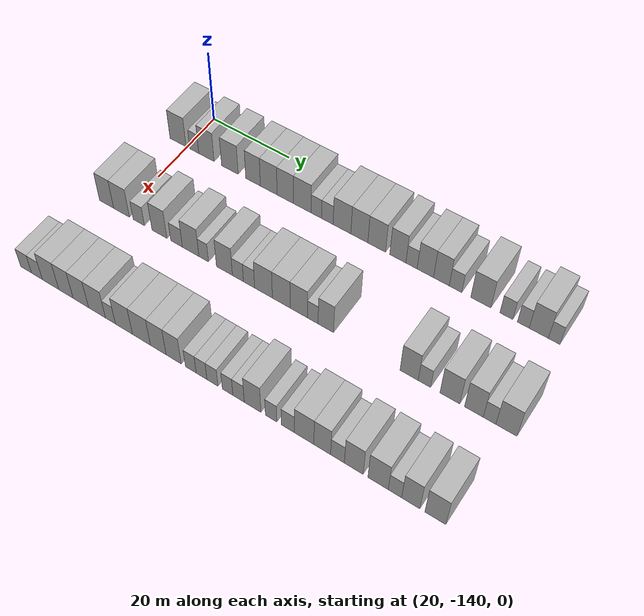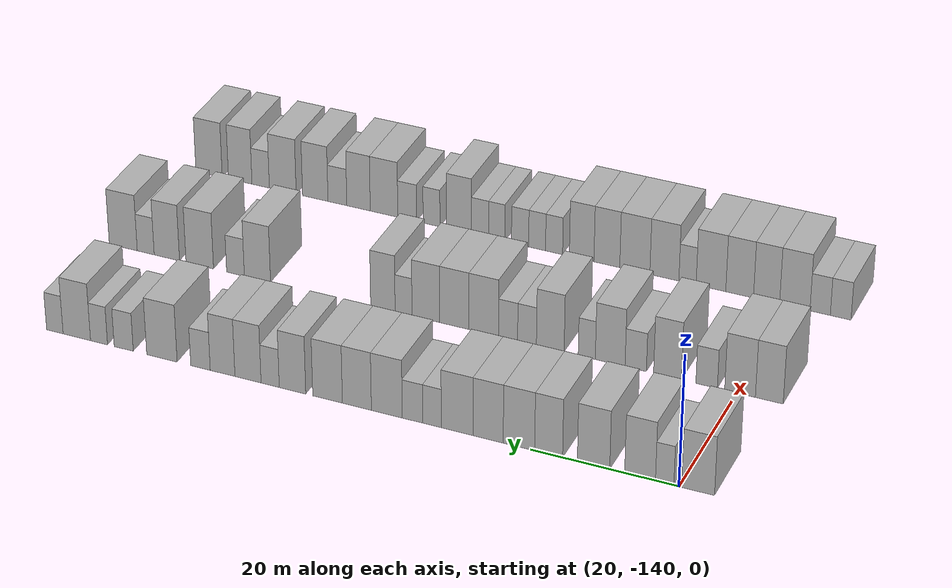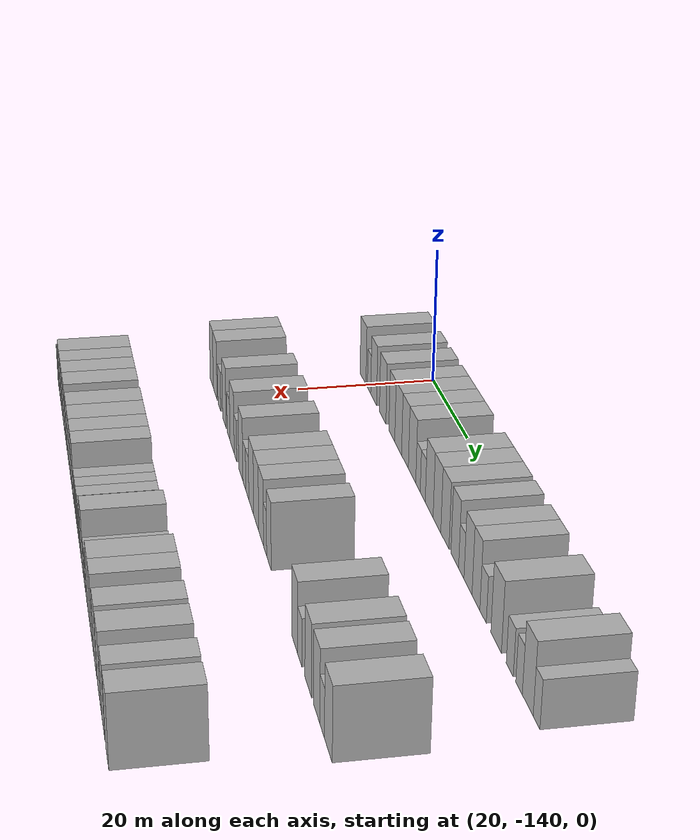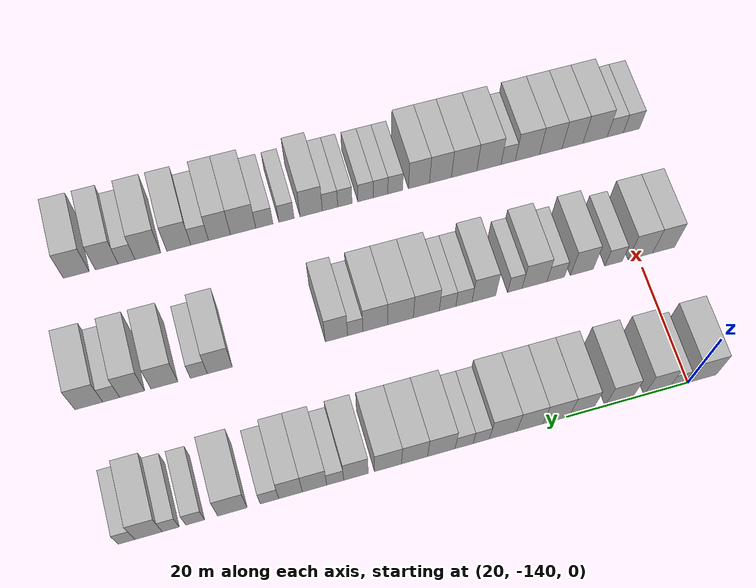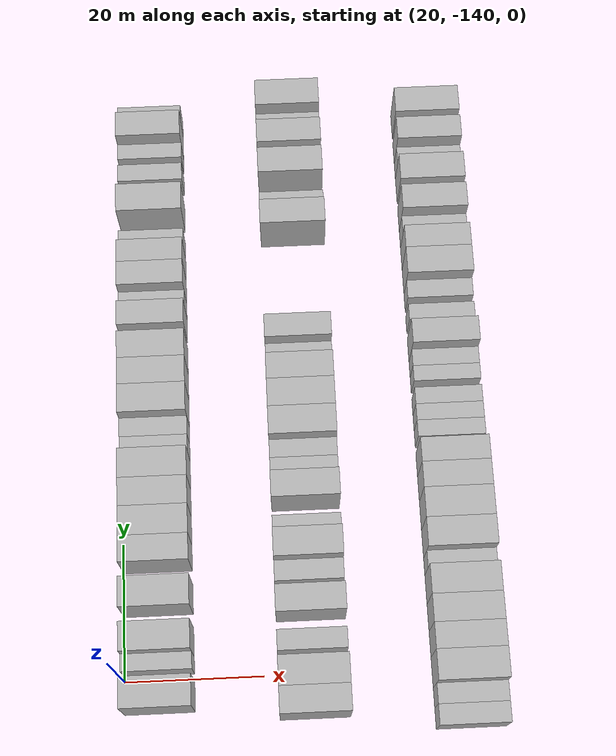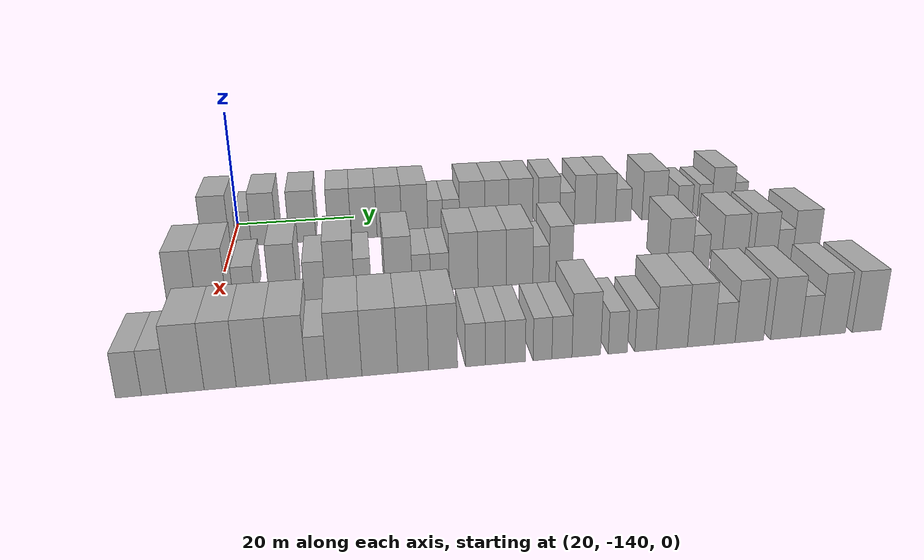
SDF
<sdf version="1.6">
 <world name="default">
  <model name="building_20">
   <static>1</static>
   <pose>25.0000 -142.4273 0 0.000000 0.000000 0.000000</pose>
   <link name="link">
    <pose>0 0 4.50 0 0 0</pose>
    <collision name="collision"><geometry><box><size>10.0000 4.3751 9.0000</size></box></geometry></collision>
    <visual name="visual">
     <cast_shadows>0</cast_shadows>
     <geometry><box><size>10.0000 4.3751 9.0000</size></box></geometry>
     <material>
      <script>
       <uri>model://HANNAS_wall/materials/scripts</uri>
       <uri>model://HANNAS_wall/materials/textures</uri>
       <name>vrc/HANNAS_wall</name>
      </script>
     </material>
    </visual>
   </link>
  </model>
  <model name="building_21">
   <static>1</static>
   <pose>25.0000 -138.0152 0 0.000000 0.000000 0.000000</pose>
   <link name="link">
    <pose>0 0 3.00 0 0 0</pose>
    <collision name="collision"><geometry><box><size>10.0000 2.4492 6.0000</size></box></geometry></collision>
    <visual name="visual">
     <cast_shadows>0</cast_shadows>
     <geometry><box><size>10.0000 2.4492 6.0000</size></box></geometry>
     <material>
      <script>
       <uri>model://HANNAS_wall/materials/scripts</uri>
       <uri>model://HANNAS_wall/materials/textures</uri>
       <name>vrc/HANNAS_wall</name>
      </script>
     </material>
    </visual>
   </link>
  </model>
  <model name="building_22">
   <static>1</static>
   <pose>25.0000 -134.7343 0 0.000000 0.000000 0.000000</pose>
   <link name="link">
    <pose>0 0 4.50 0 0 0</pose>
    <collision name="collision"><geometry><box><size>10.0000 4.1126 9.0000</size></box></geometry></collision>
    <visual name="visual">
     <cast_shadows>0</cast_shadows>
     <geometry><box><size>10.0000 4.1126 9.0000</size></box></geometry>
     <material>
      <script>
       <uri>model://HANNAS_wall/materials/scripts</uri>
       <uri>model://HANNAS_wall/materials/textures</uri>
       <name>vrc/HANNAS_wall</name>
      </script>
     </material>
    </visual>
   </link>
  </model>
  <model name="building_23">
   <static>1</static>
   <pose>25.0000 -128.4942 0 0.000000 0.000000 0.000000</pose>
   <link name="link">
    <pose>0 0 4.50 0 0 0</pose>
    <collision name="collision"><geometry><box><size>10.0000 4.3674 9.0000</size></box></geometry></collision>
    <visual name="visual">
     <cast_shadows>0</cast_shadows>
     <geometry><box><size>10.0000 4.3674 9.0000</size></box></geometry>
     <material>
      <script>
       <uri>model://HANNAS_wall/materials/scripts</uri>
       <uri>model://HANNAS_wall/materials/textures</uri>
       <name>vrc/HANNAS_wall</name>
      </script>
     </material>
    </visual>
   </link>
  </model>
  <model name="building_24">
   <static>1</static>
   <pose>25.0000 -122.4114 0 0.000000 0.000000 0.000000</pose>
   <link name="link">
    <pose>0 0 4.50 0 0 0</pose>
    <collision name="collision"><geometry><box><size>10.0000 3.7984 9.0000</size></box></geometry></collision>
    <visual name="visual">
     <cast_shadows>0</cast_shadows>
     <geometry><box><size>10.0000 3.7984 9.0000</size></box></geometry>
     <material>
      <script>
       <uri>model://HANNAS_wall/materials/scripts</uri>
       <uri>model://HANNAS_wall/materials/textures</uri>
       <name>vrc/HANNAS_wall</name>
      </script>
     </material>
    </visual>
   </link>
  </model>
  <model name="building_25">
   <static>1</static>
   <pose>25.0000 -118.3592 0 0.000000 0.000000 0.000000</pose>
   <link name="link">
    <pose>0 0 4.50 0 0 0</pose>
    <collision name="collision"><geometry><box><size>10.0000 4.3058 9.0000</size></box></geometry></collision>
    <visual name="visual">
     <cast_shadows>0</cast_shadows>
     <geometry><box><size>10.0000 4.3058 9.0000</size></box></geometry>
     <material>
      <script>
       <uri>model://HANNAS_wall/materials/scripts</uri>
       <uri>model://HANNAS_wall/materials/textures</uri>
       <name>vrc/HANNAS_wall</name>
      </script>
     </material>
    </visual>
   </link>
  </model>
  <model name="building_26">
   <static>1</static>
   <pose>25.0000 -114.1197 0 0.000000 0.000000 0.000000</pose>
   <link name="link">
    <pose>0 0 4.50 0 0 0</pose>
    <collision name="collision"><geometry><box><size>10.0000 4.1732 9.0000</size></box></geometry></collision>
    <visual name="visual">
     <cast_shadows>0</cast_shadows>
     <geometry><box><size>10.0000 4.1732 9.0000</size></box></geometry>
     <material>
      <script>
       <uri>model://HANNAS_wall/materials/scripts</uri>
       <uri>model://HANNAS_wall/materials/textures</uri>
       <name>vrc/HANNAS_wall</name>
      </script>
     </material>
    </visual>
   </link>
  </model>
  <model name="building_27">
   <static>1</static>
   <pose>25.0000 -109.8321 0 0.000000 0.000000 0.000000</pose>
   <link name="link">
    <pose>0 0 4.50 0 0 0</pose>
    <collision name="collision"><geometry><box><size>10.0000 4.4021 9.0000</size></box></geometry></collision>
    <visual name="visual">
     <cast_shadows>0</cast_shadows>
     <geometry><box><size>10.0000 4.4021 9.0000</size></box></geometry>
     <material>
      <script>
       <uri>model://HANNAS_wall/materials/scripts</uri>
       <uri>model://HANNAS_wall/materials/textures</uri>
       <name>vrc/HANNAS_wall</name>
      </script>
     </material>
    </visual>
   </link>
  </model>
  <model name="building_28">
   <static>1</static>
   <pose>25.0000 -106.3405 0 0.000000 0.000000 0.000000</pose>
   <link name="link">
    <pose>0 0 3.00 0 0 0</pose>
    <collision name="collision"><geometry><box><size>10.0000 2.5811 6.0000</size></box></geometry></collision>
    <visual name="visual">
     <cast_shadows>0</cast_shadows>
     <geometry><box><size>10.0000 2.5811 6.0000</size></box></geometry>
     <material>
      <script>
       <uri>model://HANNAS_wall/materials/scripts</uri>
       <uri>model://HANNAS_wall/materials/textures</uri>
       <name>vrc/HANNAS_wall</name>
      </script>
     </material>
    </visual>
   </link>
  </model>
  <model name="building_29">
   <static>1</static>
   <pose>25.0000 -103.6158 0 0.000000 0.000000 0.000000</pose>
   <link name="link">
    <pose>0 0 3.00 0 0 0</pose>
    <collision name="collision"><geometry><box><size>10.0000 2.8682 6.0000</size></box></geometry></collision>
    <visual name="visual">
     <cast_shadows>0</cast_shadows>
     <geometry><box><size>10.0000 2.8682 6.0000</size></box></geometry>
     <material>
      <script>
       <uri>model://HANNAS_wall/materials/scripts</uri>
       <uri>model://HANNAS_wall/materials/textures</uri>
       <name>vrc/HANNAS_wall</name>
      </script>
     </material>
    </visual>
   </link>
  </model>
  <model name="building_30">
   <static>1</static>
   <pose>25.0000 -100.0108 0 0.000000 0.000000 0.000000</pose>
   <link name="link">
    <pose>0 0 4.50 0 0 0</pose>
    <collision name="collision"><geometry><box><size>10.0000 4.3418 9.0000</size></box></geometry></collision>
    <visual name="visual">
     <cast_shadows>0</cast_shadows>
     <geometry><box><size>10.0000 4.3418 9.0000</size></box></geometry>
     <material>
      <script>
       <uri>model://HANNAS_wall/materials/scripts</uri>
       <uri>model://HANNAS_wall/materials/textures</uri>
       <name>vrc/HANNAS_wall</name>
      </script>
     </material>
    </visual>
   </link>
  </model>
  <model name="building_31">
   <static>1</static>
   <pose>25.0000 -95.7848 0 0.000000 0.000000 0.000000</pose>
   <link name="link">
    <pose>0 0 4.50 0 0 0</pose>
    <collision name="collision"><geometry><box><size>10.0000 4.1102 9.0000</size></box></geometry></collision>
    <visual name="visual">
     <cast_shadows>0</cast_shadows>
     <geometry><box><size>10.0000 4.1102 9.0000</size></box></geometry>
     <material>
      <script>
       <uri>model://HANNAS_wall/materials/scripts</uri>
       <uri>model://HANNAS_wall/materials/textures</uri>
       <name>vrc/HANNAS_wall</name>
      </script>
     </material>
    </visual>
   </link>
  </model>
  <model name="building_32">
   <static>1</static>
   <pose>25.0000 -91.6138 0 0.000000 0.000000 0.000000</pose>
   <link name="link">
    <pose>0 0 4.50 0 0 0</pose>
    <collision name="collision"><geometry><box><size>10.0000 4.2317 9.0000</size></box></geometry></collision>
    <visual name="visual">
     <cast_shadows>0</cast_shadows>
     <geometry><box><size>10.0000 4.2317 9.0000</size></box></geometry>
     <material>
      <script>
       <uri>model://HANNAS_wall/materials/scripts</uri>
       <uri>model://HANNAS_wall/materials/textures</uri>
       <name>vrc/HANNAS_wall</name>
      </script>
     </material>
    </visual>
   </link>
  </model>
  <model name="building_33">
   <static>1</static>
   <pose>25.0000 -86.5945 0 0.000000 0.000000 0.000000</pose>
   <link name="link">
    <pose>0 0 4.50 0 0 0</pose>
    <collision name="collision"><geometry><box><size>10.0000 3.8068 9.0000</size></box></geometry></collision>
    <visual name="visual">
     <cast_shadows>0</cast_shadows>
     <geometry><box><size>10.0000 3.8068 9.0000</size></box></geometry>
     <material>
      <script>
       <uri>model://HANNAS_wall/materials/scripts</uri>
       <uri>model://HANNAS_wall/materials/textures</uri>
       <name>vrc/HANNAS_wall</name>
      </script>
     </material>
    </visual>
   </link>
  </model>
  <model name="building_34">
   <static>1</static>
   <pose>25.0000 -83.3781 0 0.000000 0.000000 0.000000</pose>
   <link name="link">
    <pose>0 0 3.00 0 0 0</pose>
    <collision name="collision"><geometry><box><size>10.0000 2.6260 6.0000</size></box></geometry></collision>
    <visual name="visual">
     <cast_shadows>0</cast_shadows>
     <geometry><box><size>10.0000 2.6260 6.0000</size></box></geometry>
     <material>
      <script>
       <uri>model://HANNAS_wall/materials/scripts</uri>
       <uri>model://HANNAS_wall/materials/textures</uri>
       <name>vrc/HANNAS_wall</name>
      </script>
     </material>
    </visual>
   </link>
  </model>
  <model name="building_35">
   <static>1</static>
   <pose>25.0000 -80.1703 0 0.000000 0.000000 0.000000</pose>
   <link name="link">
    <pose>0 0 4.50 0 0 0</pose>
    <collision name="collision"><geometry><box><size>10.0000 3.7896 9.0000</size></box></geometry></collision>
    <visual name="visual">
     <cast_shadows>0</cast_shadows>
     <geometry><box><size>10.0000 3.7896 9.0000</size></box></geometry>
     <material>
      <script>
       <uri>model://HANNAS_wall/materials/scripts</uri>
       <uri>model://HANNAS_wall/materials/textures</uri>
       <name>vrc/HANNAS_wall</name>
      </script>
     </material>
    </visual>
   </link>
  </model>
  <model name="building_36">
   <static>1</static>
   <pose>25.0000 -76.4731 0 0.000000 0.000000 0.000000</pose>
   <link name="link">
    <pose>0 0 4.50 0 0 0</pose>
    <collision name="collision"><geometry><box><size>10.0000 3.6050 9.0000</size></box></geometry></collision>
    <visual name="visual">
     <cast_shadows>0</cast_shadows>
     <geometry><box><size>10.0000 3.6050 9.0000</size></box></geometry>
     <material>
      <script>
       <uri>model://HANNAS_wall/materials/scripts</uri>
       <uri>model://HANNAS_wall/materials/textures</uri>
       <name>vrc/HANNAS_wall</name>
      </script>
     </material>
    </visual>
   </link>
  </model>
  <model name="building_37">
   <static>1</static>
   <pose>25.0000 -73.2413 0 0.000000 0.000000 0.000000</pose>
   <link name="link">
    <pose>0 0 3.00 0 0 0</pose>
    <collision name="collision"><geometry><box><size>10.0000 2.8585 6.0000</size></box></geometry></collision>
    <visual name="visual">
     <cast_shadows>0</cast_shadows>
     <geometry><box><size>10.0000 2.8585 6.0000</size></box></geometry>
     <material>
      <script>
       <uri>model://HANNAS_wall/materials/scripts</uri>
       <uri>model://HANNAS_wall/materials/textures</uri>
       <name>vrc/HANNAS_wall</name>
      </script>
     </material>
    </visual>
   </link>
  </model>
  <model name="building_38">
   <static>1</static>
   <pose>25.0000 -67.5652 0 0.000000 0.000000 0.000000</pose>
   <link name="link">
    <pose>0 0 4.50 0 0 0</pose>
    <collision name="collision"><geometry><box><size>10.0000 4.4938 9.0000</size></box></geometry></collision>
    <visual name="visual">
     <cast_shadows>0</cast_shadows>
     <geometry><box><size>10.0000 4.4938 9.0000</size></box></geometry>
     <material>
      <script>
       <uri>model://HANNAS_wall/materials/scripts</uri>
       <uri>model://HANNAS_wall/materials/textures</uri>
       <name>vrc/HANNAS_wall</name>
      </script>
     </material>
    </visual>
   </link>
  </model>
  <model name="building_39">
   <static>1</static>
   <pose>25.0000 -61.8991 0 0.000000 0.000000 0.000000</pose>
   <link name="link">
    <pose>0 0 3.00 0 0 0</pose>
    <collision name="collision"><geometry><box><size>10.0000 2.8385 6.0000</size></box></geometry></collision>
    <visual name="visual">
     <cast_shadows>0</cast_shadows>
     <geometry><box><size>10.0000 2.8385 6.0000</size></box></geometry>
     <material>
      <script>
       <uri>model://HANNAS_wall/materials/scripts</uri>
       <uri>model://HANNAS_wall/materials/textures</uri>
       <name>vrc/HANNAS_wall</name>
      </script>
     </material>
    </visual>
   </link>
  </model>
  <model name="building_40">
   <static>1</static>
   <pose>25.0000 -58.2076 0 0.000000 0.000000 0.000000</pose>
   <link name="link">
    <pose>0 0 3.00 0 0 0</pose>
    <collision name="collision"><geometry><box><size>10.0000 2.5444 6.0000</size></box></geometry></collision>
    <visual name="visual">
     <cast_shadows>0</cast_shadows>
     <geometry><box><size>10.0000 2.5444 6.0000</size></box></geometry>
     <material>
      <script>
       <uri>model://HANNAS_wall/materials/scripts</uri>
       <uri>model://HANNAS_wall/materials/textures</uri>
       <name>vrc/HANNAS_wall</name>
      </script>
     </material>
    </visual>
   </link>
  </model>
  <model name="building_41">
   <static>1</static>
   <pose>25.0000 -54.8697 0 0.000000 0.000000 0.000000</pose>
   <link name="link">
    <pose>0 0 4.50 0 0 0</pose>
    <collision name="collision"><geometry><box><size>10.0000 4.1313 9.0000</size></box></geometry></collision>
    <visual name="visual">
     <cast_shadows>0</cast_shadows>
     <geometry><box><size>10.0000 4.1313 9.0000</size></box></geometry>
     <material>
      <script>
       <uri>model://HANNAS_wall/materials/scripts</uri>
       <uri>model://HANNAS_wall/materials/textures</uri>
       <name>vrc/HANNAS_wall</name>
      </script>
     </material>
    </visual>
   </link>
  </model>
  <model name="building_42">
   <static>1</static>
   <pose>25.0000 -51.5605 0 0.000000 0.000000 0.000000</pose>
   <link name="link">
    <pose>0 0 3.00 0 0 0</pose>
    <collision name="collision"><geometry><box><size>10.0000 2.4872 6.0000</size></box></geometry></collision>
    <visual name="visual">
     <cast_shadows>0</cast_shadows>
     <geometry><box><size>10.0000 2.4872 6.0000</size></box></geometry>
     <material>
      <script>
       <uri>model://HANNAS_wall/materials/scripts</uri>
       <uri>model://HANNAS_wall/materials/textures</uri>
       <name>vrc/HANNAS_wall</name>
      </script>
     </material>
    </visual>
   </link>
  </model>
  <model name="building_143">
   <static>1</static>
   <pose>47.0000 -144.3827 0 0.000000 0.000000 0.000000</pose>
   <link name="link">
    <pose>0 0 4.50 0 0 0</pose>
    <collision name="collision"><geometry><box><size>10.0000 3.7878 9.0000</size></box></geometry></collision>
    <visual name="visual">
     <cast_shadows>0</cast_shadows>
     <geometry><box><size>10.0000 3.7878 9.0000</size></box></geometry>
     <material>
      <script>
       <uri>model://HANNAS_wall/materials/scripts</uri>
       <uri>model://HANNAS_wall/materials/textures</uri>
       <name>vrc/HANNAS_wall</name>
      </script>
     </material>
    </visual>
   </link>
  </model>
  <model name="building_144">
   <static>1</static>
   <pose>47.0000 -140.3847 0 0.000000 0.000000 0.000000</pose>
   <link name="link">
    <pose>0 0 4.50 0 0 0</pose>
    <collision name="collision"><geometry><box><size>10.0000 4.2082 9.0000</size></box></geometry></collision>
    <visual name="visual">
     <cast_shadows>0</cast_shadows>
     <geometry><box><size>10.0000 4.2082 9.0000</size></box></geometry>
     <material>
      <script>
       <uri>model://HANNAS_wall/materials/scripts</uri>
       <uri>model://HANNAS_wall/materials/textures</uri>
       <name>vrc/HANNAS_wall</name>
      </script>
     </material>
    </visual>
   </link>
  </model>
  <model name="building_145">
   <static>1</static>
   <pose>47.0000 -135.7984 0 0.000000 0.000000 0.000000</pose>
   <link name="link">
    <pose>0 0 3.00 0 0 0</pose>
    <collision name="collision"><geometry><box><size>10.0000 2.9645 6.0000</size></box></geometry></collision>
    <visual name="visual">
     <cast_shadows>0</cast_shadows>
     <geometry><box><size>10.0000 2.9645 6.0000</size></box></geometry>
     <material>
      <script>
       <uri>model://HANNAS_wall/materials/scripts</uri>
       <uri>model://HANNAS_wall/materials/textures</uri>
       <name>vrc/HANNAS_wall</name>
      </script>
     </material>
    </visual>
   </link>
  </model>
  <model name="building_146">
   <static>1</static>
   <pose>47.0000 -130.3795 0 0.000000 0.000000 0.000000</pose>
   <link name="link">
    <pose>0 0 4.50 0 0 0</pose>
    <collision name="collision"><geometry><box><size>10.0000 3.8733 9.0000</size></box></geometry></collision>
    <visual name="visual">
     <cast_shadows>0</cast_shadows>
     <geometry><box><size>10.0000 3.8733 9.0000</size></box></geometry>
     <material>
      <script>
       <uri>model://HANNAS_wall/materials/scripts</uri>
       <uri>model://HANNAS_wall/materials/textures</uri>
       <name>vrc/HANNAS_wall</name>
      </script>
     </material>
    </visual>
   </link>
  </model>
  <model name="building_147">
   <static>1</static>
   <pose>47.0000 -125.9514 0 0.000000 0.000000 0.000000</pose>
   <link name="link">
    <pose>0 0 3.00 0 0 0</pose>
    <collision name="collision"><geometry><box><size>10.0000 2.9828 6.0000</size></box></geometry></collision>
    <visual name="visual">
     <cast_shadows>0</cast_shadows>
     <geometry><box><size>10.0000 2.9828 6.0000</size></box></geometry>
     <material>
      <script>
       <uri>model://HANNAS_wall/materials/scripts</uri>
       <uri>model://HANNAS_wall/materials/textures</uri>
       <name>vrc/HANNAS_wall</name>
      </script>
     </material>
    </visual>
   </link>
  </model>
  <model name="building_148">
   <static>1</static>
   <pose>47.0000 -122.3668 0 0.000000 0.000000 0.000000</pose>
   <link name="link">
    <pose>0 0 4.50 0 0 0</pose>
    <collision name="collision"><geometry><box><size>10.0000 4.1864 9.0000</size></box></geometry></collision>
    <visual name="visual">
     <cast_shadows>0</cast_shadows>
     <geometry><box><size>10.0000 4.1864 9.0000</size></box></geometry>
     <material>
      <script>
       <uri>model://HANNAS_wall/materials/scripts</uri>
       <uri>model://HANNAS_wall/materials/textures</uri>
       <name>vrc/HANNAS_wall</name>
      </script>
     </material>
    </visual>
   </link>
  </model>
  <model name="building_149">
   <static>1</static>
   <pose>47.0000 -119.0679 0 0.000000 0.000000 0.000000</pose>
   <link name="link">
    <pose>0 0 3.00 0 0 0</pose>
    <collision name="collision"><geometry><box><size>10.0000 2.4114 6.0000</size></box></geometry></collision>
    <visual name="visual">
     <cast_shadows>0</cast_shadows>
     <geometry><box><size>10.0000 2.4114 6.0000</size></box></geometry>
     <material>
      <script>
       <uri>model://HANNAS_wall/materials/scripts</uri>
       <uri>model://HANNAS_wall/materials/textures</uri>
       <name>vrc/HANNAS_wall</name>
      </script>
     </material>
    </visual>
   </link>
  </model>
  <model name="building_150">
   <static>1</static>
   <pose>47.0000 -113.8886 0 0.000000 0.000000 0.000000</pose>
   <link name="link">
    <pose>0 0 4.50 0 0 0</pose>
    <collision name="collision"><geometry><box><size>10.0000 3.9472 9.0000</size></box></geometry></collision>
    <visual name="visual">
     <cast_shadows>0</cast_shadows>
     <geometry><box><size>10.0000 3.9472 9.0000</size></box></geometry>
     <material>
      <script>
       <uri>model://HANNAS_wall/materials/scripts</uri>
       <uri>model://HANNAS_wall/materials/textures</uri>
       <name>vrc/HANNAS_wall</name>
      </script>
     </material>
    </visual>
   </link>
  </model>
  <model name="building_151">
   <static>1</static>
   <pose>47.0000 -110.5682 0 0.000000 0.000000 0.000000</pose>
   <link name="link">
    <pose>0 0 3.00 0 0 0</pose>
    <collision name="collision"><geometry><box><size>10.0000 2.6937 6.0000</size></box></geometry></collision>
    <visual name="visual">
     <cast_shadows>0</cast_shadows>
     <geometry><box><size>10.0000 2.6937 6.0000</size></box></geometry>
     <material>
      <script>
       <uri>model://HANNAS_wall/materials/scripts</uri>
       <uri>model://HANNAS_wall/materials/textures</uri>
       <name>vrc/HANNAS_wall</name>
      </script>
     </material>
    </visual>
   </link>
  </model>
  <model name="building_152">
   <static>1</static>
   <pose>47.0000 -107.8478 0 0.000000 0.000000 0.000000</pose>
   <link name="link">
    <pose>0 0 3.00 0 0 0</pose>
    <collision name="collision"><geometry><box><size>10.0000 2.7470 6.0000</size></box></geometry></collision>
    <visual name="visual">
     <cast_shadows>0</cast_shadows>
     <geometry><box><size>10.0000 2.7470 6.0000</size></box></geometry>
     <material>
      <script>
       <uri>model://HANNAS_wall/materials/scripts</uri>
       <uri>model://HANNAS_wall/materials/textures</uri>
       <name>vrc/HANNAS_wall</name>
      </script>
     </material>
    </visual>
   </link>
  </model>
  <model name="building_153">
   <static>1</static>
   <pose>47.0000 -104.3420 0 0.000000 0.000000 0.000000</pose>
   <link name="link">
    <pose>0 0 4.50 0 0 0</pose>
    <collision name="collision"><geometry><box><size>10.0000 4.2645 9.0000</size></box></geometry></collision>
    <visual name="visual">
     <cast_shadows>0</cast_shadows>
     <geometry><box><size>10.0000 4.2645 9.0000</size></box></geometry>
     <material>
      <script>
       <uri>model://HANNAS_wall/materials/scripts</uri>
       <uri>model://HANNAS_wall/materials/textures</uri>
       <name>vrc/HANNAS_wall</name>
      </script>
     </material>
    </visual>
   </link>
  </model>
  <model name="building_154">
   <static>1</static>
   <pose>47.0000 -100.0839 0 0.000000 0.000000 0.000000</pose>
   <link name="link">
    <pose>0 0 4.50 0 0 0</pose>
    <collision name="collision"><geometry><box><size>10.0000 4.2518 9.0000</size></box></geometry></collision>
    <visual name="visual">
     <cast_shadows>0</cast_shadows>
     <geometry><box><size>10.0000 4.2518 9.0000</size></box></geometry>
     <material>
      <script>
       <uri>model://HANNAS_wall/materials/scripts</uri>
       <uri>model://HANNAS_wall/materials/textures</uri>
       <name>vrc/HANNAS_wall</name>
      </script>
     </material>
    </visual>
   </link>
  </model>
  <model name="building_155">
   <static>1</static>
   <pose>47.0000 -95.9371 0 0.000000 0.000000 0.000000</pose>
   <link name="link">
    <pose>0 0 4.50 0 0 0</pose>
    <collision name="collision"><geometry><box><size>10.0000 4.0418 9.0000</size></box></geometry></collision>
    <visual name="visual">
     <cast_shadows>0</cast_shadows>
     <geometry><box><size>10.0000 4.0418 9.0000</size></box></geometry>
     <material>
      <script>
       <uri>model://HANNAS_wall/materials/scripts</uri>
       <uri>model://HANNAS_wall/materials/textures</uri>
       <name>vrc/HANNAS_wall</name>
      </script>
     </material>
    </visual>
   </link>
  </model>
  <model name="building_156">
   <static>1</static>
   <pose>47.0000 -92.6735 0 0.000000 0.000000 0.000000</pose>
   <link name="link">
    <pose>0 0 3.00 0 0 0</pose>
    <collision name="collision"><geometry><box><size>10.0000 2.4854 6.0000</size></box></geometry></collision>
    <visual name="visual">
     <cast_shadows>0</cast_shadows>
     <geometry><box><size>10.0000 2.4854 6.0000</size></box></geometry>
     <material>
      <script>
       <uri>model://HANNAS_wall/materials/scripts</uri>
       <uri>model://HANNAS_wall/materials/textures</uri>
       <name>vrc/HANNAS_wall</name>
      </script>
     </material>
    </visual>
   </link>
  </model>
  <model name="building_157">
   <static>1</static>
   <pose>47.0000 -89.6303 0 0.000000 0.000000 0.000000</pose>
   <link name="link">
    <pose>0 0 4.50 0 0 0</pose>
    <collision name="collision"><geometry><box><size>10.0000 3.6009 9.0000</size></box></geometry></collision>
    <visual name="visual">
     <cast_shadows>0</cast_shadows>
     <geometry><box><size>10.0000 3.6009 9.0000</size></box></geometry>
     <material>
      <script>
       <uri>model://HANNAS_wall/materials/scripts</uri>
       <uri>model://HANNAS_wall/materials/textures</uri>
       <name>vrc/HANNAS_wall</name>
      </script>
     </material>
    </visual>
   </link>
  </model>
  <model name="building_158">
   <static>1</static>
   <pose>47.0000 -70.8716 0 0.000000 0.000000 0.000000</pose>
   <link name="link">
    <pose>0 0 4.50 0 0 0</pose>
    <collision name="collision"><geometry><box><size>10.0000 3.9722 9.0000</size></box></geometry></collision>
    <visual name="visual">
     <cast_shadows>0</cast_shadows>
     <geometry><box><size>10.0000 3.9722 9.0000</size></box></geometry>
     <material>
      <script>
       <uri>model://HANNAS_wall/materials/scripts</uri>
       <uri>model://HANNAS_wall/materials/textures</uri>
       <name>vrc/HANNAS_wall</name>
      </script>
     </material>
    </visual>
   </link>
  </model>
  <model name="building_159">
   <static>1</static>
   <pose>47.0000 -67.5375 0 0.000000 0.000000 0.000000</pose>
   <link name="link">
    <pose>0 0 3.00 0 0 0</pose>
    <collision name="collision"><geometry><box><size>10.0000 2.6961 6.0000</size></box></geometry></collision>
    <visual name="visual">
     <cast_shadows>0</cast_shadows>
     <geometry><box><size>10.0000 2.6961 6.0000</size></box></geometry>
     <material>
      <script>
       <uri>model://HANNAS_wall/materials/scripts</uri>
       <uri>model://HANNAS_wall/materials/textures</uri>
       <name>vrc/HANNAS_wall</name>
      </script>
     </material>
    </visual>
   </link>
  </model>
  <model name="building_160">
   <static>1</static>
   <pose>47.0000 -62.0799 0 0.000000 0.000000 0.000000</pose>
   <link name="link">
    <pose>0 0 4.50 0 0 0</pose>
    <collision name="collision"><geometry><box><size>10.0000 4.2191 9.0000</size></box></geometry></collision>
    <visual name="visual">
     <cast_shadows>0</cast_shadows>
     <geometry><box><size>10.0000 4.2191 9.0000</size></box></geometry>
     <material>
      <script>
       <uri>model://HANNAS_wall/materials/scripts</uri>
       <uri>model://HANNAS_wall/materials/textures</uri>
       <name>vrc/HANNAS_wall</name>
      </script>
     </material>
    </visual>
   </link>
  </model>
  <model name="building_161">
   <static>1</static>
   <pose>47.0000 -57.0115 0 0.000000 0.000000 0.000000</pose>
   <link name="link">
    <pose>0 0 4.50 0 0 0</pose>
    <collision name="collision"><geometry><box><size>10.0000 3.9176 9.0000</size></box></geometry></collision>
    <visual name="visual">
     <cast_shadows>0</cast_shadows>
     <geometry><box><size>10.0000 3.9176 9.0000</size></box></geometry>
     <material>
      <script>
       <uri>model://HANNAS_wall/materials/scripts</uri>
       <uri>model://HANNAS_wall/materials/textures</uri>
       <name>vrc/HANNAS_wall</name>
      </script>
     </material>
    </visual>
   </link>
  </model>
  <model name="building_162">
   <static>1</static>
   <pose>47.0000 -53.7384 0 0.000000 0.000000 0.000000</pose>
   <link name="link">
    <pose>0 0 3.00 0 0 0</pose>
    <collision name="collision"><geometry><box><size>10.0000 2.6285 6.0000</size></box></geometry></collision>
    <visual name="visual">
     <cast_shadows>0</cast_shadows>
     <geometry><box><size>10.0000 2.6285 6.0000</size></box></geometry>
     <material>
      <script>
       <uri>model://HANNAS_wall/materials/scripts</uri>
       <uri>model://HANNAS_wall/materials/textures</uri>
       <name>vrc/HANNAS_wall</name>
      </script>
     </material>
    </visual>
   </link>
  </model>
  <model name="building_163">
   <static>1</static>
   <pose>47.0000 -50.2461 0 0.000000 0.000000 0.000000</pose>
   <link name="link">
    <pose>0 0 4.50 0 0 0</pose>
    <collision name="collision"><geometry><box><size>10.0000 4.3562 9.0000</size></box></geometry></collision>
    <visual name="visual">
     <cast_shadows>0</cast_shadows>
     <geometry><box><size>10.0000 4.3562 9.0000</size></box></geometry>
     <material>
      <script>
       <uri>model://HANNAS_wall/materials/scripts</uri>
       <uri>model://HANNAS_wall/materials/textures</uri>
       <name>vrc/HANNAS_wall</name>
      </script>
     </material>
    </visual>
   </link>
  </model>
  <model name="building_262">
   <static>1</static>
   <pose>69.0000 -147.0719 0 0.000000 0.000000 0.000000</pose>
   <link name="link">
    <pose>0 0 3.00 0 0 0</pose>
    <collision name="collision"><geometry><box><size>10.0000 2.9055 6.0000</size></box></geometry></collision>
    <visual name="visual">
     <cast_shadows>0</cast_shadows>
     <geometry><box><size>10.0000 2.9055 6.0000</size></box></geometry>
     <material>
      <script>
       <uri>model://HANNAS_wall/materials/scripts</uri>
       <uri>model://HANNAS_wall/materials/textures</uri>
       <name>vrc/HANNAS_wall</name>
      </script>
     </material>
    </visual>
   </link>
  </model>
  <model name="building_263">
   <static>1</static>
   <pose>69.0000 -144.1870 0 0.000000 0.000000 0.000000</pose>
   <link name="link">
    <pose>0 0 3.00 0 0 0</pose>
    <collision name="collision"><geometry><box><size>10.0000 2.8644 6.0000</size></box></geometry></collision>
    <visual name="visual">
     <cast_shadows>0</cast_shadows>
     <geometry><box><size>10.0000 2.8644 6.0000</size></box></geometry>
     <material>
      <script>
       <uri>model://HANNAS_wall/materials/scripts</uri>
       <uri>model://HANNAS_wall/materials/textures</uri>
       <name>vrc/HANNAS_wall</name>
      </script>
     </material>
    </visual>
   </link>
  </model>
  <model name="building_264">
   <static>1</static>
   <pose>69.0000 -140.6082 0 0.000000 0.000000 0.000000</pose>
   <link name="link">
    <pose>0 0 4.50 0 0 0</pose>
    <collision name="collision"><geometry><box><size>10.0000 4.2930 9.0000</size></box></geometry></collision>
    <visual name="visual">
     <cast_shadows>0</cast_shadows>
     <geometry><box><size>10.0000 4.2930 9.0000</size></box></geometry>
     <material>
      <script>
       <uri>model://HANNAS_wall/materials/scripts</uri>
       <uri>model://HANNAS_wall/materials/textures</uri>
       <name>vrc/HANNAS_wall</name>
      </script>
     </material>
    </visual>
   </link>
  </model>
  <model name="building_265">
   <static>1</static>
   <pose>69.0000 -136.6017 0 0.000000 0.000000 0.000000</pose>
   <link name="link">
    <pose>0 0 4.50 0 0 0</pose>
    <collision name="collision"><geometry><box><size>10.0000 3.7200 9.0000</size></box></geometry></collision>
    <visual name="visual">
     <cast_shadows>0</cast_shadows>
     <geometry><box><size>10.0000 3.7200 9.0000</size></box></geometry>
     <material>
      <script>
       <uri>model://HANNAS_wall/materials/scripts</uri>
       <uri>model://HANNAS_wall/materials/textures</uri>
       <name>vrc/HANNAS_wall</name>
      </script>
     </material>
    </visual>
   </link>
  </model>
  <model name="building_266">
   <static>1</static>
   <pose>69.0000 -132.7601 0 0.000000 0.000000 0.000000</pose>
   <link name="link">
    <pose>0 0 4.50 0 0 0</pose>
    <collision name="collision"><geometry><box><size>10.0000 3.9632 9.0000</size></box></geometry></collision>
    <visual name="visual">
     <cast_shadows>0</cast_shadows>
     <geometry><box><size>10.0000 3.9632 9.0000</size></box></geometry>
     <material>
      <script>
       <uri>model://HANNAS_wall/materials/scripts</uri>
       <uri>model://HANNAS_wall/materials/textures</uri>
       <name>vrc/HANNAS_wall</name>
      </script>
     </material>
    </visual>
   </link>
  </model>
  <model name="building_267">
   <static>1</static>
   <pose>69.0000 -128.6463 0 0.000000 0.000000 0.000000</pose>
   <link name="link">
    <pose>0 0 4.50 0 0 0</pose>
    <collision name="collision"><geometry><box><size>10.0000 4.2644 9.0000</size></box></geometry></collision>
    <visual name="visual">
     <cast_shadows>0</cast_shadows>
     <geometry><box><size>10.0000 4.2644 9.0000</size></box></geometry>
     <material>
      <script>
       <uri>model://HANNAS_wall/materials/scripts</uri>
       <uri>model://HANNAS_wall/materials/textures</uri>
       <name>vrc/HANNAS_wall</name>
      </script>
     </material>
    </visual>
   </link>
  </model>
  <model name="building_268">
   <static>1</static>
   <pose>69.0000 -125.2661 0 0.000000 0.000000 0.000000</pose>
   <link name="link">
    <pose>0 0 3.00 0 0 0</pose>
    <collision name="collision"><geometry><box><size>10.0000 2.4962 6.0000</size></box></geometry></collision>
    <visual name="visual">
     <cast_shadows>0</cast_shadows>
     <geometry><box><size>10.0000 2.4962 6.0000</size></box></geometry>
     <material>
      <script>
       <uri>model://HANNAS_wall/materials/scripts</uri>
       <uri>model://HANNAS_wall/materials/textures</uri>
       <name>vrc/HANNAS_wall</name>
      </script>
     </material>
    </visual>
   </link>
  </model>
  <model name="building_269">
   <static>1</static>
   <pose>69.0000 -121.9098 0 0.000000 0.000000 0.000000</pose>
   <link name="link">
    <pose>0 0 4.50 0 0 0</pose>
    <collision name="collision"><geometry><box><size>10.0000 4.2163 9.0000</size></box></geometry></collision>
    <visual name="visual">
     <cast_shadows>0</cast_shadows>
     <geometry><box><size>10.0000 4.2163 9.0000</size></box></geometry>
     <material>
      <script>
       <uri>model://HANNAS_wall/materials/scripts</uri>
       <uri>model://HANNAS_wall/materials/textures</uri>
       <name>vrc/HANNAS_wall</name>
      </script>
     </material>
    </visual>
   </link>
  </model>
  <model name="building_270">
   <static>1</static>
   <pose>69.0000 -117.6037 0 0.000000 0.000000 0.000000</pose>
   <link name="link">
    <pose>0 0 4.50 0 0 0</pose>
    <collision name="collision"><geometry><box><size>10.0000 4.3958 9.0000</size></box></geometry></collision>
    <visual name="visual">
     <cast_shadows>0</cast_shadows>
     <geometry><box><size>10.0000 4.3958 9.0000</size></box></geometry>
     <material>
      <script>
       <uri>model://HANNAS_wall/materials/scripts</uri>
       <uri>model://HANNAS_wall/materials/textures</uri>
       <name>vrc/HANNAS_wall</name>
      </script>
     </material>
    </visual>
   </link>
  </model>
  <model name="building_271">
   <static>1</static>
   <pose>69.0000 -113.5051 0 0.000000 0.000000 0.000000</pose>
   <link name="link">
    <pose>0 0 4.50 0 0 0</pose>
    <collision name="collision"><geometry><box><size>10.0000 3.8015 9.0000</size></box></geometry></collision>
    <visual name="visual">
     <cast_shadows>0</cast_shadows>
     <geometry><box><size>10.0000 3.8015 9.0000</size></box></geometry>
     <material>
      <script>
       <uri>model://HANNAS_wall/materials/scripts</uri>
       <uri>model://HANNAS_wall/materials/textures</uri>
       <name>vrc/HANNAS_wall</name>
      </script>
     </material>
    </visual>
   </link>
  </model>
  <model name="building_272">
   <static>1</static>
   <pose>69.0000 -109.7887 0 0.000000 0.000000 0.000000</pose>
   <link name="link">
    <pose>0 0 4.50 0 0 0</pose>
    <collision name="collision"><geometry><box><size>10.0000 3.6314 9.0000</size></box></geometry></collision>
    <visual name="visual">
     <cast_shadows>0</cast_shadows>
     <geometry><box><size>10.0000 3.6314 9.0000</size></box></geometry>
     <material>
      <script>
       <uri>model://HANNAS_wall/materials/scripts</uri>
       <uri>model://HANNAS_wall/materials/textures</uri>
       <name>vrc/HANNAS_wall</name>
      </script>
     </material>
    </visual>
   </link>
  </model>
  <model name="building_273">
   <static>1</static>
   <pose>69.0000 -105.7056 0 0.000000 0.000000 0.000000</pose>
   <link name="link">
    <pose>0 0 3.00 0 0 0</pose>
    <collision name="collision"><geometry><box><size>10.0000 2.5346 6.0000</size></box></geometry></collision>
    <visual name="visual">
     <cast_shadows>0</cast_shadows>
     <geometry><box><size>10.0000 2.5346 6.0000</size></box></geometry>
     <material>
      <script>
       <uri>model://HANNAS_wall/materials/scripts</uri>
       <uri>model://HANNAS_wall/materials/textures</uri>
       <name>vrc/HANNAS_wall</name>
      </script>
     </material>
    </visual>
   </link>
  </model>
  <model name="building_274">
   <static>1</static>
   <pose>69.0000 -103.1794 0 0.000000 0.000000 0.000000</pose>
   <link name="link">
    <pose>0 0 3.00 0 0 0</pose>
    <collision name="collision"><geometry><box><size>10.0000 2.5178 6.0000</size></box></geometry></collision>
    <visual name="visual">
     <cast_shadows>0</cast_shadows>
     <geometry><box><size>10.0000 2.5178 6.0000</size></box></geometry>
     <material>
      <script>
       <uri>model://HANNAS_wall/materials/scripts</uri>
       <uri>model://HANNAS_wall/materials/textures</uri>
       <name>vrc/HANNAS_wall</name>
      </script>
     </material>
    </visual>
   </link>
  </model>
  <model name="building_275">
   <static>1</static>
   <pose>69.0000 -100.6301 0 0.000000 0.000000 0.000000</pose>
   <link name="link">
    <pose>0 0 3.00 0 0 0</pose>
    <collision name="collision"><geometry><box><size>10.0000 2.5808 6.0000</size></box></geometry></collision>
    <visual name="visual">
     <cast_shadows>0</cast_shadows>
     <geometry><box><size>10.0000 2.5808 6.0000</size></box></geometry>
     <material>
      <script>
       <uri>model://HANNAS_wall/materials/scripts</uri>
       <uri>model://HANNAS_wall/materials/textures</uri>
       <name>vrc/HANNAS_wall</name>
      </script>
     </material>
    </visual>
   </link>
  </model>
  <model name="building_276">
   <static>1</static>
   <pose>69.0000 -97.1263 0 0.000000 0.000000 0.000000</pose>
   <link name="link">
    <pose>0 0 3.00 0 0 0</pose>
    <collision name="collision"><geometry><box><size>10.0000 2.4267 6.0000</size></box></geometry></collision>
    <visual name="visual">
     <cast_shadows>0</cast_shadows>
     <geometry><box><size>10.0000 2.4267 6.0000</size></box></geometry>
     <material>
      <script>
       <uri>model://HANNAS_wall/materials/scripts</uri>
       <uri>model://HANNAS_wall/materials/textures</uri>
       <name>vrc/HANNAS_wall</name>
      </script>
     </material>
    </visual>
   </link>
  </model>
  <model name="building_277">
   <static>1</static>
   <pose>69.0000 -94.6070 0 0.000000 0.000000 0.000000</pose>
   <link name="link">
    <pose>0 0 3.00 0 0 0</pose>
    <collision name="collision"><geometry><box><size>10.0000 2.6118 6.0000</size></box></geometry></collision>
    <visual name="visual">
     <cast_shadows>0</cast_shadows>
     <geometry><box><size>10.0000 2.6118 6.0000</size></box></geometry>
     <material>
      <script>
       <uri>model://HANNAS_wall/materials/scripts</uri>
       <uri>model://HANNAS_wall/materials/textures</uri>
       <name>vrc/HANNAS_wall</name>
      </script>
     </material>
    </visual>
   </link>
  </model>
  <model name="building_278">
   <static>1</static>
   <pose>69.0000 -91.4184 0 0.000000 0.000000 0.000000</pose>
   <link name="link">
    <pose>0 0 4.50 0 0 0</pose>
    <collision name="collision"><geometry><box><size>10.0000 3.7654 9.0000</size></box></geometry></collision>
    <visual name="visual">
     <cast_shadows>0</cast_shadows>
     <geometry><box><size>10.0000 3.7654 9.0000</size></box></geometry>
     <material>
      <script>
       <uri>model://HANNAS_wall/materials/scripts</uri>
       <uri>model://HANNAS_wall/materials/textures</uri>
       <name>vrc/HANNAS_wall</name>
      </script>
     </material>
    </visual>
   </link>
  </model>
  <model name="building_279">
   <static>1</static>
   <pose>69.0000 -87.2550 0 0.000000 0.000000 0.000000</pose>
   <link name="link">
    <pose>0 0 3.00 0 0 0</pose>
    <collision name="collision"><geometry><box><size>10.0000 2.5614 6.0000</size></box></geometry></collision>
    <visual name="visual">
     <cast_shadows>0</cast_shadows>
     <geometry><box><size>10.0000 2.5614 6.0000</size></box></geometry>
     <material>
      <script>
       <uri>model://HANNAS_wall/materials/scripts</uri>
       <uri>model://HANNAS_wall/materials/textures</uri>
       <name>vrc/HANNAS_wall</name>
      </script>
     </material>
    </visual>
   </link>
  </model>
  <model name="building_280">
   <static>1</static>
   <pose>69.0000 -83.5331 0 0.000000 0.000000 0.000000</pose>
   <link name="link">
    <pose>0 0 3.00 0 0 0</pose>
    <collision name="collision"><geometry><box><size>10.0000 2.8825 6.0000</size></box></geometry></collision>
    <visual name="visual">
     <cast_shadows>0</cast_shadows>
     <geometry><box><size>10.0000 2.8825 6.0000</size></box></geometry>
     <material>
      <script>
       <uri>model://HANNAS_wall/materials/scripts</uri>
       <uri>model://HANNAS_wall/materials/textures</uri>
       <name>vrc/HANNAS_wall</name>
      </script>
     </material>
    </visual>
   </link>
  </model>
  <model name="building_281">
   <static>1</static>
   <pose>69.0000 -79.9729 0 0.000000 0.000000 0.000000</pose>
   <link name="link">
    <pose>0 0 4.50 0 0 0</pose>
    <collision name="collision"><geometry><box><size>10.0000 4.2379 9.0000</size></box></geometry></collision>
    <visual name="visual">
     <cast_shadows>0</cast_shadows>
     <geometry><box><size>10.0000 4.2379 9.0000</size></box></geometry>
     <material>
      <script>
       <uri>model://HANNAS_wall/materials/scripts</uri>
       <uri>model://HANNAS_wall/materials/textures</uri>
       <name>vrc/HANNAS_wall</name>
      </script>
     </material>
    </visual>
   </link>
  </model>
  <model name="building_282">
   <static>1</static>
   <pose>69.0000 -76.0387 0 0.000000 0.000000 0.000000</pose>
   <link name="link">
    <pose>0 0 4.50 0 0 0</pose>
    <collision name="collision"><geometry><box><size>10.0000 3.6305 9.0000</size></box></geometry></collision>
    <visual name="visual">
     <cast_shadows>0</cast_shadows>
     <geometry><box><size>10.0000 3.6305 9.0000</size></box></geometry>
     <material>
      <script>
       <uri>model://HANNAS_wall/materials/scripts</uri>
       <uri>model://HANNAS_wall/materials/textures</uri>
       <name>vrc/HANNAS_wall</name>
      </script>
     </material>
    </visual>
   </link>
  </model>
  <model name="building_283">
   <static>1</static>
   <pose>69.0000 -72.7601 0 0.000000 0.000000 0.000000</pose>
   <link name="link">
    <pose>0 0 3.00 0 0 0</pose>
    <collision name="collision"><geometry><box><size>10.0000 2.9266 6.0000</size></box></geometry></collision>
    <visual name="visual">
     <cast_shadows>0</cast_shadows>
     <geometry><box><size>10.0000 2.9266 6.0000</size></box></geometry>
     <material>
      <script>
       <uri>model://HANNAS_wall/materials/scripts</uri>
       <uri>model://HANNAS_wall/materials/textures</uri>
       <name>vrc/HANNAS_wall</name>
      </script>
     </material>
    </visual>
   </link>
  </model>
  <model name="building_284">
   <static>1</static>
   <pose>69.0000 -69.3073 0 0.000000 0.000000 0.000000</pose>
   <link name="link">
    <pose>0 0 4.50 0 0 0</pose>
    <collision name="collision"><geometry><box><size>10.0000 3.9789 9.0000</size></box></geometry></collision>
    <visual name="visual">
     <cast_shadows>0</cast_shadows>
     <geometry><box><size>10.0000 3.9789 9.0000</size></box></geometry>
     <material>
      <script>
       <uri>model://HANNAS_wall/materials/scripts</uri>
       <uri>model://HANNAS_wall/materials/textures</uri>
       <name>vrc/HANNAS_wall</name>
      </script>
     </material>
    </visual>
   </link>
  </model>
  <model name="building_285">
   <static>1</static>
   <pose>69.0000 -64.2045 0 0.000000 0.000000 0.000000</pose>
   <link name="link">
    <pose>0 0 4.50 0 0 0</pose>
    <collision name="collision"><geometry><box><size>10.0000 4.2268 9.0000</size></box></geometry></collision>
    <visual name="visual">
     <cast_shadows>0</cast_shadows>
     <geometry><box><size>10.0000 4.2268 9.0000</size></box></geometry>
     <material>
      <script>
       <uri>model://HANNAS_wall/materials/scripts</uri>
       <uri>model://HANNAS_wall/materials/textures</uri>
       <name>vrc/HANNAS_wall</name>
      </script>
     </material>
    </visual>
   </link>
  </model>
  <model name="building_286">
   <static>1</static>
   <pose>69.0000 -60.7169 0 0.000000 0.000000 0.000000</pose>
   <link name="link">
    <pose>0 0 3.00 0 0 0</pose>
    <collision name="collision"><geometry><box><size>10.0000 2.7483 6.0000</size></box></geometry></collision>
    <visual name="visual">
     <cast_shadows>0</cast_shadows>
     <geometry><box><size>10.0000 2.7483 6.0000</size></box></geometry>
     <material>
      <script>
       <uri>model://HANNAS_wall/materials/scripts</uri>
       <uri>model://HANNAS_wall/materials/textures</uri>
       <name>vrc/HANNAS_wall</name>
      </script>
     </material>
    </visual>
   </link>
  </model>
  <model name="building_287">
   <static>1</static>
   <pose>69.0000 -57.4789 0 0.000000 0.000000 0.000000</pose>
   <link name="link">
    <pose>0 0 4.50 0 0 0</pose>
    <collision name="collision"><geometry><box><size>10.0000 3.7279 9.0000</size></box></geometry></collision>
    <visual name="visual">
     <cast_shadows>0</cast_shadows>
     <geometry><box><size>10.0000 3.7279 9.0000</size></box></geometry>
     <material>
      <script>
       <uri>model://HANNAS_wall/materials/scripts</uri>
       <uri>model://HANNAS_wall/materials/textures</uri>
       <name>vrc/HANNAS_wall</name>
      </script>
     </material>
    </visual>
   </link>
  </model>
  <model name="building_288">
   <static>1</static>
   <pose>69.0000 -52.5131 0 0.000000 0.000000 0.000000</pose>
   <link name="link">
    <pose>0 0 4.50 0 0 0</pose>
    <collision name="collision"><geometry><box><size>10.0000 4.2036 9.0000</size></box></geometry></collision>
    <visual name="visual">
     <cast_shadows>0</cast_shadows>
     <geometry><box><size>10.0000 4.2036 9.0000</size></box></geometry>
     <material>
      <script>
       <uri>model://HANNAS_wall/materials/scripts</uri>
       <uri>model://HANNAS_wall/materials/textures</uri>
       <name>vrc/HANNAS_wall</name>
      </script>
     </material>
    </visual>
   </link>
  </model>
 </world>
</sdf>
